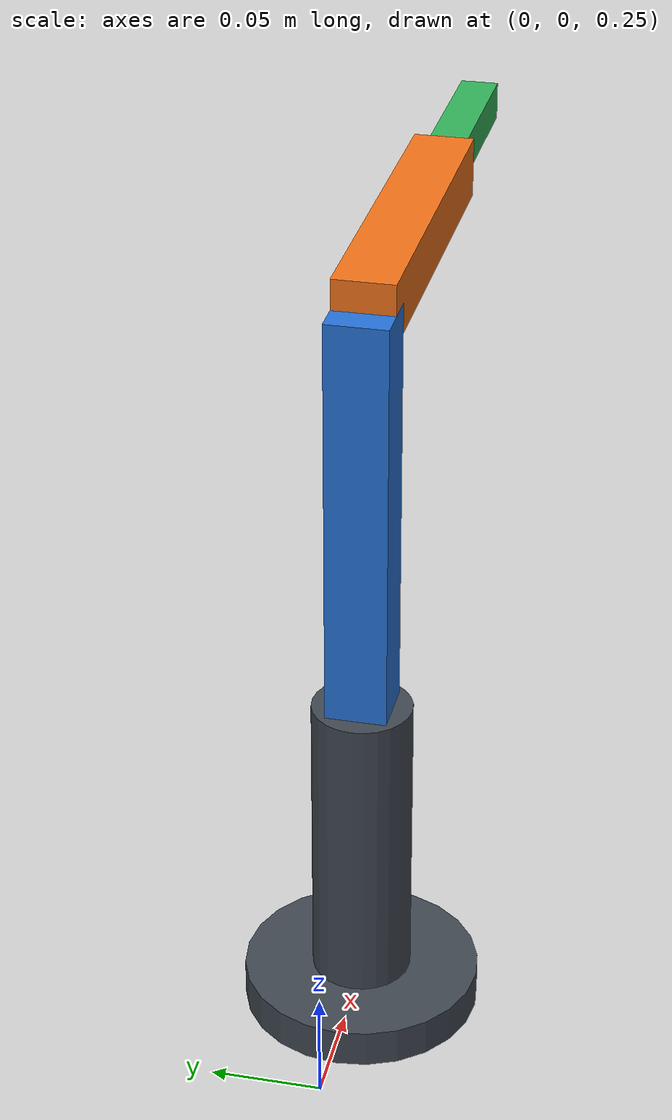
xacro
<?xml version="1.0"?>
<robot name="custom_3dof" xmlns:xacro="http://www.ros.org/wiki/xacro">
  <xacro:include filename="materials.xacro"/>

  <xacro:property name="j1_to_j2" value="0.161"/>
  <xacro:property name="j2_to_j3" value="0.191"/>
  <!-- 肘部到腕部分界 0.172，腕部到 TCP 0.092，合计 0.264，与底层 d6+d7=0.086+0.178 一致 -->
  <xacro:property name="j3_to_wrist" value="0.172"/>
  <xacro:property name="wrist_length" value="0.092"/>
  <!-- PROVISIONAL drawing estimates, NOT calibrated TCP dimensions. -->
  <xacro:property name="tcp_z_provisional" value="0.020"/>
  <!-- 臂在底盘上的安装偏置 = kinematics.c 的 base_offset -->
  <xacro:property name="arm_mount_x" value="0.085"/>
  <xacro:property name="arm_mount_z" value="0.24"/>
  <!-- Illustrative geometry dimensions only; not measured hardware envelopes. -->
  <xacro:property name="base_radius" value="0.055"/>
  <xacro:property name="base_height" value="0.018"/>
  <xacro:property name="column_radius" value="0.023"/>
  <xacro:property name="arm_width" value="0.028"/>
  <xacro:property name="wrist_width" value="0.018"/>

  <xacro:macro name="box_link" params="name size xyz material">
    <link name="${name}">
      <visual><origin xyz="${xyz}"/><geometry><box size="${size}"/></geometry><material name="${material}"/></visual>
      <collision><origin xyz="${xyz}"/><geometry><box size="${size}"/></geometry></collision>
    </link>
  </xacro:macro>
  <xacro:macro name="cylinder_link" params="name radius length z material">
    <link name="${name}">
      <visual><origin xyz="0 0 ${z}"/><geometry><cylinder radius="${radius}" length="${length}"/></geometry><material name="${material}"/></visual>
      <collision><origin xyz="0 0 ${z}"/><geometry><cylinder radius="${radius}" length="${length}"/></geometry></collision>
    </link>
  </xacro:macro>

  <!-- ===== 底盘层：镜像底层 q[0..2] = [x, y, phi]（固件当前硬编码为 0，world 与 chassis 重合）。
       T_car = Trans(x,y)·RotZ(phi)；KDL 不支持 planar 关节，拆成三个单元关节。
       car_x/car_y 的 limit 仅为 RViz 滑块可视化范围，不是任何物理限位。 ===== -->
  <link name="world"/>
  <link name="car_x"/>
  <link name="car_y"/>
  <link name="chassis"/>
  <joint name="car_x_joint" type="prismatic">
    <parent link="world"/><child link="car_x"/>
    <origin xyz="0 0 0" rpy="0 0 0"/><axis xyz="1 0 0"/>
    <limit effort="0" velocity="0" lower="-5" upper="5"/>
  </joint>
  <joint name="car_y_joint" type="prismatic">
    <parent link="car_x"/><child link="car_y"/>
    <origin xyz="0 0 0" rpy="0 0 0"/><axis xyz="0 1 0"/>
    <limit effort="0" velocity="0" lower="-5" upper="5"/>
  </joint>
  <joint name="car_yaw_joint" type="continuous">
    <parent link="car_y"/><child link="chassis"/>
    <origin xyz="0 0 0" rpy="0 0 0"/><axis xyz="0 0 1"/>
  </joint>

  <joint name="arm_mount_joint" type="fixed">
    <parent link="chassis"/><child link="base_link"/>
    <origin xyz="${arm_mount_x} 0 ${arm_mount_z}" rpy="0 0 0"/>
  </joint>

  <xacro:cylinder_link name="base_link" radius="${base_radius}" length="${base_height}" z="${base_height/2}" material="base_gray"/>
  <xacro:cylinder_link name="link1" radius="${column_radius}" length="${j1_to_j2}" z="${j1_to_j2/2}" material="base_gray"/>
  <xacro:box_link name="link2" size="${arm_width} ${arm_width} ${j2_to_j3}" xyz="0 0 ${j2_to_j3/2}" material="arm_blue"/>
  <xacro:box_link name="link3" size="${j3_to_wrist} ${arm_width} ${arm_width}" xyz="${j3_to_wrist/2} 0 0" material="elbow_orange"/>
  <xacro:box_link name="link4" size="${wrist_length} ${wrist_width} ${wrist_width}" xyz="${wrist_length/2} 0 0" material="wrist_green"/>
  <link name="tool0"/>
  <link name="tcp"/>

  <!-- 轴方向由底层 MDH 链对拍确定：joint2/joint3 为 (0,1,0)（旧版 (0,-1,0) 与底层反号，已翻转）。 -->
  <joint name="joint1" type="continuous">
    <parent link="base_link"/><child link="link1"/>
    <origin xyz="0 0 0" rpy="0 0 0"/><axis xyz="0 0 1"/>
  </joint>
  <joint name="joint2" type="continuous">
    <parent link="link1"/><child link="link2"/>
    <origin xyz="0 0 ${j1_to_j2}" rpy="0 0 0"/><axis xyz="0 1 0"/>
  </joint>
  <joint name="joint3" type="continuous">
    <parent link="link2"/><child link="link3"/>
    <origin xyz="0 0 ${j2_to_j3}" rpy="0 0 0"/><axis xyz="0 1 0"/>
  </joint>
  <!-- 腕部固定（底层 FK 中固定）：joint4 由 revolute 改为 fixed，保持链命名不变 -->
  <joint name="joint4" type="fixed">
    <parent link="link3"/><child link="link4"/>
    <origin xyz="${j3_to_wrist} 0 0" rpy="0 0 0"/>
  </joint>
  <joint name="link4_to_tool0" type="fixed">
    <parent link="link4"/><child link="tool0"/><origin xyz="0 0 0" rpy="0 0 0"/>
  </joint>
  <joint name="tool0_to_tcp" type="fixed">
    <parent link="tool0"/><child link="tcp"/>
    <origin xyz="${wrist_length} 0 ${tcp_z_provisional}" rpy="0 0 0"/>
  </joint>
</robot>

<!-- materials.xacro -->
<robot xmlns:xacro="http://www.ros.org/wiki/xacro">
  <material name="base_gray"><color rgba="0.25 0.28 0.32 1"/></material>
  <material name="arm_blue"><color rgba="0.15 0.45 0.85 1"/></material>
  <material name="elbow_orange"><color rgba="0.95 0.45 0.10 1"/></material>
  <material name="wrist_green"><color rgba="0.2 0.7 0.35 1"/></material>
</robot>
